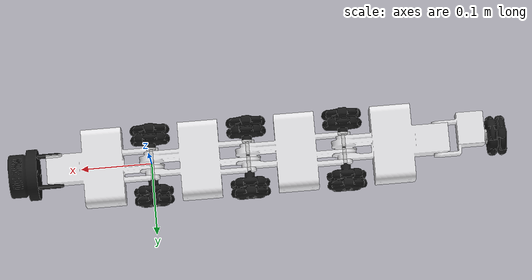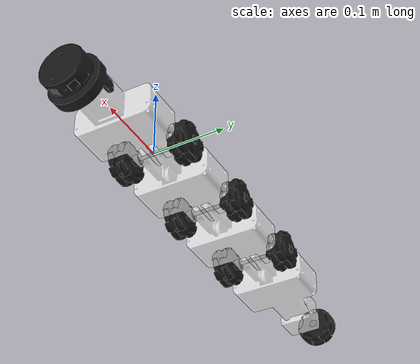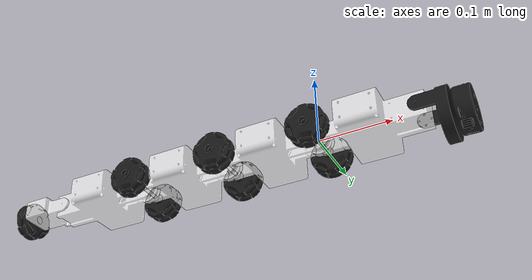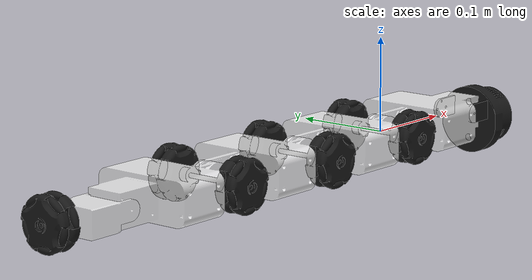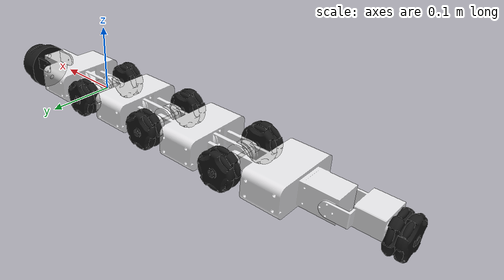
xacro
<?xml version="1.0" ?>
<robot name="ipir_joint" xmlns:xacro="http://www.ros.org/wiki/xacro">

<xacro:include filename="$(find inpipe_robot)/urdf/materials.xacro" />
<xacro:include filename="$(find inpipe_robot)/urdf/ipir_joint.trans" />
<xacro:include filename="$(find inpipe_robot)/urdf/ipir_joint.gazebo" />
<xacro:include filename="$(find inpipe_robot)/urdf/ros2_control/ipir_ros2_control.xacro" />

<link name="odom"/>

<link name="base_link">
  <inertial>
    <origin xyz="0.17541030046030262 3.928493990302075e-05 -0.01352541440466145" rpy="0 0 0"/>
    <mass value="0.16024284518242346"/>
    <inertia ixx="9.0844e-05" iyy="6.6976e-05" izz="6.9672e-05" ixy="-5.2604e-07" iyz="3.8996e-07" ixz="2.4139e-06"/>
  </inertial>
  <visual>
    <origin xyz="0 0 0" rpy="0 0 0"/>
    <geometry>
      <mesh filename="file://$(find inpipe_robot)/meshes/base_link.stl" scale="0.001 0.001 0.001"/>
    </geometry>
    <material name="Plastic-Glossy(Black)"/>
  </visual>
  <collision>
    <origin xyz="0 0 0" rpy="0 0 0"/>
    <geometry>
      <mesh filename="file://$(find inpipe_robot)/meshes/base_link.stl" scale="0.001 0.001 0.001"/>
    </geometry>
  </collision>
</link>

<link name="front_link">
  <inertial>
    <origin xyz="-0.056282877016992985 -0.013484471080203871 0.00026677007032810315" rpy="0 0 0"/>
    <mass value="0.214"/>
    <inertia ixx="2.0631e-04" iyy="2.4274e-04" izz="3.8054e-04" ixy="2.0416e-05" iyz="3.6565e-07" ixz="-2.0529e-06"/>
  </inertial>
  <visual>
    <origin xyz="-0.136 -0.01895 -0.0" rpy="0 0 0"/>
    <geometry>
      <mesh filename="file://$(find inpipe_robot)/meshes/front_link.stl" scale="0.001 0.001 0.001"/>
    </geometry>
    <material name="Trans-White"/>
  </visual>
  <collision>
    <origin xyz="-0.136 -0.01895 -0.0" rpy="0 0 0"/>
    <geometry>
      <mesh filename="file://$(find inpipe_robot)/meshes/front_link.stl" scale="0.001 0.001 0.001"/>
    </geometry>
  </collision>
</link>

<link name="mid_1_link">
  <inertial>
    <origin xyz="-0.0641177838817207 -0.01694424806812528 4.947874036676852e-05" rpy="0 0 0"/>
    <mass value="0.389"/>
    <inertia ixx="4.3003e-04" iyy="3.2357e-04" izz="6.3781e-04" ixy="1.4445e-06" iyz="9.9132e-10" ixz="7.3296e-08"/>
  </inertial>
  <visual>
    <origin xyz="-0.0 -0.017 -0.0" rpy="0 0 0"/>
    <geometry>
      <mesh filename="file://$(find inpipe_robot)/meshes/mid_1_link.stl" scale="0.001 0.001 0.001"/>
    </geometry>
    <material name="Trans-White"/>
  </visual>
  <collision>
    <origin xyz="-0.0 -0.017 -0.0" rpy="0 0 0"/>
    <geometry>
      <mesh filename="file://$(find inpipe_robot)/meshes/mid_1_link.stl" scale="0.001 0.001 0.001"/>
    </geometry>
  </collision>
</link>

<link name="mid_2_link">
  <inertial>
    <origin xyz="-0.06425908155233981 -0.016943369617482138 1.8145099624598135e-05" rpy="0 0 0"/>
    <mass value="0.389"/>
    <inertia ixx="4.3044e-04" iyy="3.1988e-04" izz="6.3402e-04" ixy="1.4358e-06" iyz="5.4602e-09" ixz="3.3803e-07"/>
  </inertial>
  <visual>
    <origin xyz="0.136 -0.017 -0.0" rpy="0 0 0"/>
    <geometry>
      <mesh filename="file://$(find inpipe_robot)/meshes/mid_2_link.stl" scale="0.001 0.001 0.001"/>
    </geometry>
    <material name="Trans-White"/>
  </visual>
  <collision>
    <origin xyz="0.136 -0.017 -0.0" rpy="0 0 0"/>
    <geometry>
      <mesh filename="file://$(find inpipe_robot)/meshes/mid_2_link.stl" scale="0.001 0.001 0.001"/>
    </geometry>
  </collision>
</link>

<link name="rear_link">
  <inertial>
    <origin xyz="-0.07553839321563721 -0.02301916457849589 0.0002861228071910718" rpy="0 0 0"/>
    <mass value="0.214"/>
    <inertia ixx="1.9381e-04" iyy="2.9881e-04" izz="4.2640e-04" ixy="4.5205e-06" iyz="-2.3748e-07" ixz="2.2999e-06"/>
  </inertial>
  <visual>
    <origin xyz="0.272 -0.017 -0.0" rpy="0 0 0"/>
    <geometry>
      <mesh filename="file://$(find inpipe_robot)/meshes/rear_link.stl" scale="0.001 0.001 0.001"/>
    </geometry>
    <material name="Trans-White"/>
  </visual>
  <collision>
    <origin xyz="0.272 -0.017 -0.0" rpy="0 0 0"/>
    <geometry>
      <mesh filename="file://$(find inpipe_robot)/meshes/rear_link.stl" scale="0.001 0.001 0.001"/>
    </geometry>
  </collision>
</link>

<link name="roll_motor_link">
  <inertial>
    <origin xyz="-0.040645304555168404 -0.029639501944408397 2.5415971504229718e-18" rpy="0 0 0"/>
    <mass value="0.157"/>
    <inertia ixx="4.5111e-05" iyy="4.4776e-05" izz="7.0113e-05" ixy="-4.3928e-06" iyz="0.0" ixz="0.0"/>
  </inertial>
  <visual>
    <origin xyz="0.408 -0.01895 0.0" rpy="0 0 0"/>
    <geometry>
      <mesh filename="file://$(find inpipe_robot)/meshes/roll_motor_link.stl" scale="0.001 0.001 0.001"/>
    </geometry>
    <material name="Trans-White"/>
  </visual>
  <collision>
    <origin xyz="0.408 -0.01895 0.0" rpy="0 0 0"/>
    <geometry>
      <mesh filename="file://$(find inpipe_robot)/meshes/roll_motor_link.stl" scale="0.001 0.001 0.001"/>
    </geometry>
  </collision>
</link>

<link name="front_wheel_link">
  <inertial>
    <origin xyz="-3.8197670510731314e-07 0.0020000390046861992 3.7241520965216283e-07" rpy="0 0 0"/>
    <mass value="0.8152780188502571"/>
    <inertia ixx="0.001678" iyy="0.000269" izz="0.001678" ixy="0.0" iyz="-0.0" ixz="0.0"/>
  </inertial>
  <visual>
    <origin xyz="-0.0 0.002 0.0" rpy="0 0 0"/>
    <geometry>
      <mesh filename="file://$(find inpipe_robot)/meshes/front_wheel_link.stl" scale="0.001 0.001 0.001"/>
    </geometry>
    <material name="Plastic-Glossy(Black)"/>
  </visual>
  <collision>
    <origin xyz="-0.0 0.002 0.0" rpy="0 0 0"/>
    <geometry>
      <mesh filename="file://$(find inpipe_robot)/meshes/front_wheel_link.stl" scale="0.001 0.001 0.001"/>
    </geometry>
  </collision>
</link>

<link name="mid_wheel_link">
  <inertial>
    <origin xyz="4.576147836499178e-07 0.0020000390085600853 -2.4494861491912385e-07" rpy="0 0 0"/>
    <mass value="0.8151970524307767"/>
    <inertia ixx="0.001677" iyy="0.000269" izz="0.001677" ixy="0.0" iyz="-0.0" ixz="-0.0"/>
  </inertial>
  <visual>
    <origin xyz="0.136 0.002 0.0" rpy="0 0 0"/>
    <geometry>
      <mesh filename="file://$(find inpipe_robot)/meshes/mid_wheel_link.stl" scale="0.001 0.001 0.001"/>
    </geometry>
    <material name="Plastic-Glossy(Black)"/>
  </visual>
  <collision>
    <origin xyz="0.136 0.002 0.0" rpy="0 0 0"/>
    <geometry>
      <mesh filename="file://$(find inpipe_robot)/meshes/mid_wheel_link.stl" scale="0.001 0.001 0.001"/>
    </geometry>
  </collision>
</link>

<link name="rear_wheel_link">
  <inertial>
    <origin xyz="-8.919532772933003e-07 0.0020000390102683963 1.0547377480368319e-07" rpy="0 0 0"/>
    <mass value="0.8151613552461404"/>
    <inertia ixx="0.001677" iyy="0.000269" izz="0.001677" ixy="0.0" iyz="-0.0" ixz="-0.0"/>
  </inertial>
  <visual>
    <origin xyz="0.272 0.002 0.0" rpy="0 0 0"/>
    <geometry>
      <mesh filename="file://$(find inpipe_robot)/meshes/rear_wheel_link.stl" scale="0.001 0.001 0.001"/>
    </geometry>
    <material name="Plastic-Glossy(Black)"/>
  </visual>
  <collision>
    <origin xyz="0.272 0.002 0.0" rpy="0 0 0"/>
    <geometry>
      <mesh filename="file://$(find inpipe_robot)/meshes/rear_wheel_link.stl" scale="0.001 0.001 0.001"/>
    </geometry>
  </collision>
</link>

<link name="roll_wheel_link">
  <inertial>
    <origin xyz="-0.013101928407207697 4.603704902842636e-07 -4.912025494230328e-07" rpy="0 0 0"/>
    <mass value="0.38223605489056184"/>
    <inertia ixx="0.000134" iyy="8.7e-05" izz="8.7e-05" ixy="-0.0" iyz="0.0" ixz="-0.0"/>
  </inertial>
  <visual>
    <origin xyz="0.4739 0.00025 -0.0" rpy="0 0 0"/>
    <geometry>
      <mesh filename="file://$(find inpipe_robot)/meshes/roll_wheel_link.stl" scale="0.001 0.001 0.001"/>
    </geometry>
    <material name="Plastic-Glossy(Black)"/>
  </visual>
  <collision>
    <origin xyz="0.4739 0.00025 -0.0" rpy="0 0 0"/>
    <geometry>
      <mesh filename="file://$(find inpipe_robot)/meshes/roll_wheel_link.stl" scale="0.001 0.001 0.001"/>
    </geometry>
  </collision>
</link>

<link name="imu_link"/>

<link name="camera_link"/>

<link name="optical_camera_link"/>

<joint name="base_joint" type="fixed">
  <parent link="base_link"/>
  <child link="odom"/>
  <origin xyz="0.0 0.0 0.0" rpy="0 0 0"/>
</joint>

<joint name="lidar_joint" type="revolute">
  <origin xyz="0.136 0.01895 0.0" rpy="0 0 0"/>
  <parent link="base_link"/>
  <child link="front_link"/>
  <axis xyz="-0.0 -1.0 0.0"/>
  <limit upper="1.570796" lower="-1.832596" effort="100" velocity="100"/>
</joint>

<joint name="front_tilt_joint" type="revolute">
  <origin xyz="-0.136 -0.00195 0.0" rpy="0 0 0"/>
  <parent link="front_link"/>
  <child link="mid_1_link"/>
  <axis xyz="0.0 -1.0 0.0"/>
  <limit upper="2.094395" lower="-2.094395" effort="100" velocity="100"/>
</joint>

<joint name="mid_tilt_joint" type="revolute">
  <origin xyz="-0.136 0.0 0.0" rpy="0 0 0"/>
  <parent link="mid_1_link"/>
  <child link="mid_2_link"/>
  <axis xyz="0.0 -1.0 0.0"/>
  <limit upper="2.094395" lower="-2.094395" effort="100" velocity="100"/>
</joint>

<joint name="rear_tilt_joint" type="revolute">
  <origin xyz="-0.136 0.0 0.0" rpy="0 0 0"/>
  <parent link="mid_2_link"/>
  <child link="rear_link"/>
  <axis xyz="0.0 -1.0 0.0"/>
  <limit upper="2.094395" lower="-2.094395" effort="100" velocity="100"/>
</joint>

<joint name="roll_tilt_joint" type="revolute">
  <origin xyz="-0.136 0.00195 -0.0" rpy="0 0 0"/>
  <parent link="rear_link"/>
  <child link="roll_motor_link"/>
  <axis xyz="0.0 1.0 0.0"/>
  <limit upper="1.919862" lower="-1.919862" effort="100" velocity="100"/>
</joint>

<joint name="front_wheel_joint" type="continuous">
  <origin xyz="0.0 -0.017 -0.0" rpy="0 0 0"/>
  <parent link="mid_1_link"/>
  <child link="front_wheel_link"/>
  <axis xyz="0.0 1.0 0.0"/>
</joint>

<joint name="mid_wheel_joint" type="continuous">
  <origin xyz="0.0 -0.017 -0.0" rpy="0 0 0"/>
  <parent link="mid_2_link"/>
  <child link="mid_wheel_link"/>
  <axis xyz="0.0 1.0 0.0"/>
</joint>

<joint name="rear_wheel_joint" type="continuous">
  <origin xyz="0.0 -0.017 -0.0" rpy="0 0 0"/>
  <parent link="rear_link"/>
  <child link="rear_wheel_link"/>
  <axis xyz="0.0 1.0 0.0"/>
</joint>

<joint name="roll_wheel_joint" type="continuous">
  <origin xyz="-0.0659 -0.0192 0.0" rpy="0 0 0"/>
  <parent link="roll_motor_link"/>
  <child link="roll_wheel_link"/>
  <axis xyz="-1.0 0.0 0.0"/>
</joint>

<joint name="camera_joint" type="fixed">
  <origin xyz="0.066 -0.019 0.0" rpy="0.0 0.0 0.0"/>
  <parent link="front_link"/>
  <child link="camera_link"/>
  <axis xyz="0.0 0.0 0.0"/>
  <limit lower="0.0" upper="0.0" effort="0.0" velocity="0.0"/>
</joint>

<joint name="optical_camera_joint" type="fixed">
  <origin xyz="0.0 0.0 0.0" rpy="${-pi/2} 0.0 ${-pi/2}"/>
  <parent link="camera_link"/>
  <child link="optical_camera_link"/>
  <axis xyz="0.0 0.0 0.0"/>
</joint>

<joint name="imu_joint" type="fixed">
  <origin xyz="0.066 -0.019 0.0" rpy="0.0 ${pi/2} ${pi/2}"/>
  <parent link="front_link"/>
  <child link="imu_link"/>
</joint>

</robot>

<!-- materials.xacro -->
<robot name="ipir_joint" xmlns:xacro="http://www.ros.org/wiki/xacro" >

  <material name="Plastic-Glossy(Black)">
    <color rgba="0.098 0.098 0.098 1.0"/>
  </material>
  <material name="Steel-Satin">
    <color rgba="0.627 0.627 0.627 1.0"/>
  </material>
  <material name="Trans-White">
    <color rgba="1.0 1.0 1.0 0.8"/>
  </material>

</robot>

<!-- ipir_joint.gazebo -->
<robot name="ipir_joint" xmlns:xacro="http://www.ros.org/wiki/xacro" >

<xacro:property name="body_color" value="Gazebo/Silver" />
<xacro:property name="wheel_color" value="Gazebo/Black" />
<xacro:property name="frame_color" value="Gazebo/White" />

<gazebo>
  <plugin filename="gz_ros2_control-system" name="gz_ros2_control::GazeboSimROS2ControlPlugin">
    <robot_param>robot_description</robot_param>
    <robot_param_node>robot_state_publisher</robot_param_node>
    <parameters>$(find inpipe_robot)/config/controllers/ipir_controller.yaml</parameters>
  </plugin>
</gazebo>

<gazebo reference="base_link">
  <material>${wheel_color}</material>
  <mu1>0.2</mu1>
  <mu2>0.2</mu2>
  <self_collide>true</self_collide>
  <gravity>true</gravity>
</gazebo>

<gazebo reference="front_link">
  <material>${frame_color}</material>
  <mu1>0.2</mu1>
  <mu2>0.2</mu2>
  <self_collide>true</self_collide>
</gazebo>

<gazebo reference="mid_1_link">
  <material>${frame_color}</material>
  <mu1>0.2</mu1>
  <mu2>0.2</mu2>
  <self_collide>true</self_collide>
</gazebo>

<gazebo reference="mid_2_link">
  <material>${frame_color}</material>
  <mu1>0.2</mu1>
  <mu2>0.2</mu2>
  <self_collide>true</self_collide>
</gazebo>

<gazebo reference="rear_link">
  <material>${frame_color}</material>
  <mu1>0.2</mu1>
  <mu2>0.2</mu2>
  <self_collide>true</self_collide>
</gazebo>

<gazebo reference="roll_motor_link">
  <material>${wheel_color}</material>
  <mu1>0.2</mu1>
  <mu2>0.2</mu2>
  <self_collide>true</self_collide>
</gazebo>

<gazebo reference="front_wheel_link">
  <material>${wheel_color}</material>
  <mu1>0.2</mu1>
  <mu2>0.2</mu2>
  <self_collide>true</self_collide>
</gazebo>

<gazebo reference="mid_wheel_link">
  <material>${wheel_color}</material>
  <mu1>0.2</mu1>
  <mu2>0.2</mu2>
  <self_collide>true</self_collide>
</gazebo>

<gazebo reference="rear_wheel_link">
  <material>${wheel_color}</material>
  <mu1>0.2</mu1>
  <mu2>0.2</mu2>
  <self_collide>true</self_collide>
</gazebo>

<gazebo reference="roll_wheel_link">
  <material>${wheel_color}</material>
  <mu1>0.2</mu1>
  <mu2>0.2</mu2>
  <self_collide>true</self_collide>
</gazebo>

<gazebo reference="imu_link">
  <sensor name="imu" type="imu">
    <always_on>true</always_on>
    <update_rate>200</update_rate>
    <topic>imu</topic>
    <imu>
      <angular_velocity>
        <x>
          <noise type="gaussian">
            <mean>0.0</mean>
            <stddev>2e-4</stddev>
          </noise>
        </x>
        <y>
          <noise type="gaussian">
            <mean>0.0</mean>
            <stddev>2e-4</stddev>
          </noise>
        </y>
        <z>
          <noise type="gaussian">
            <mean>0.0</mean>
            <stddev>2e-4</stddev>
          </noise>
        </z>
      </angular_velocity>
      <linear_acceleration>
        <x>
          <noise type="gaussian">
            <mean>0.0</mean>
            <stddev>1.7e-2</stddev>
          </noise>
        </x>
        <y>
          <noise type="gaussian">
            <mean>0.0</mean>
            <stddev>1.7e-2</stddev>
          </noise>
        </y>
        <z>
          <noise type="gaussian">
            <mean>0.0</mean>
            <stddev>1.7e-2</stddev>
          </noise>
        </z>
      </linear_acceleration>
    </imu>
  </sensor>
</gazebo>

<gazebo reference="camera_link">
  <material>Gazebo/Black</material>
  <sensor name="camera" type="camera">
    <pose>0 0 0 0 0 0</pose>
    <always_on>true</always_on>
    <visualize>true</visualize>
    <update_rate>10</update_rate>
    <topic>camera/image_raw</topic>
    <gz_frame_id>optical_camera_link</gz_frame_id>
    <camera>
      <camera_info_topic>camera/camera_info</camera_info_topic>
      <horizontal_fov>1.089</horizontal_fov>
      <image>
        <format>R8G8B8</format>
        <width>640</width>
        <height>480</height>
      </image>
      <clip>
        <near>0.05</near>
        <far>8.0</far>
      </clip>
    </camera>
  </sensor>
</gazebo>

</robot>
